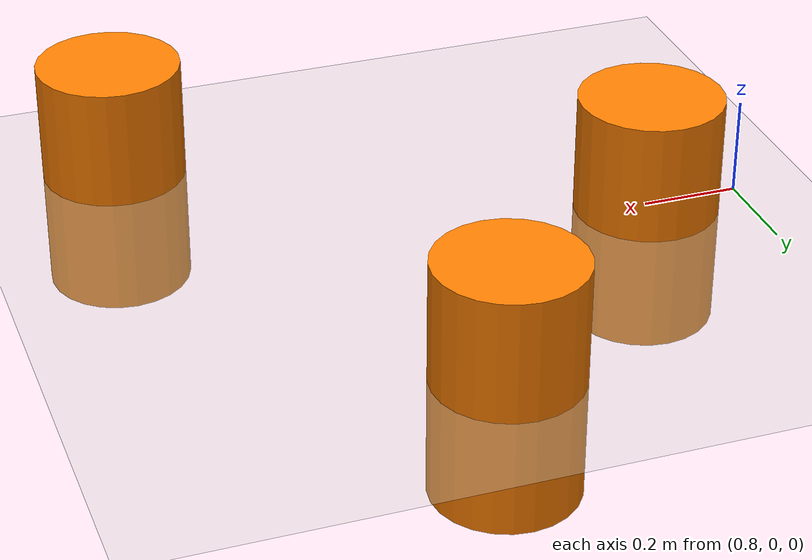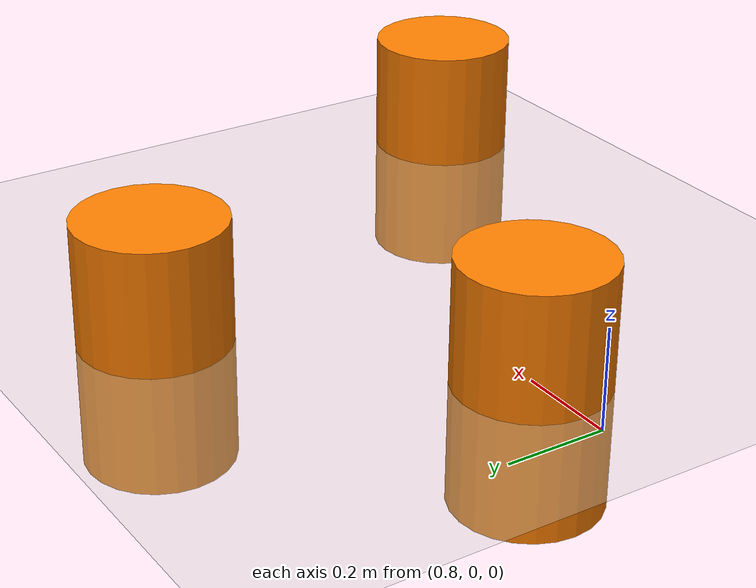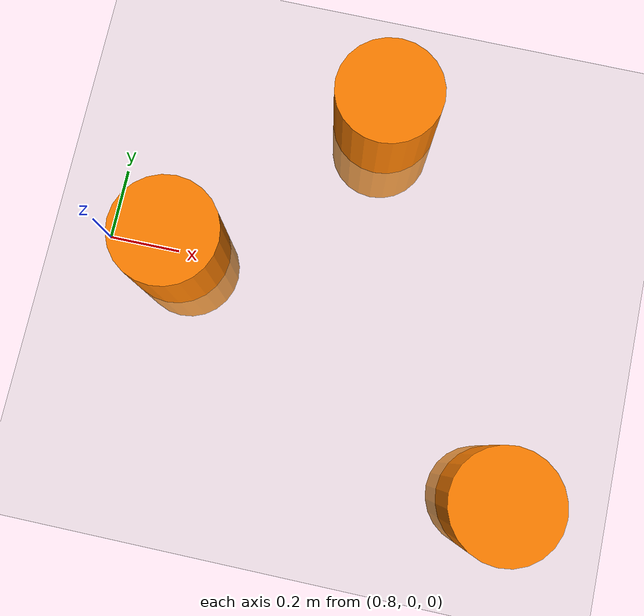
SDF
<?xml version="1.0" ?>
<sdf version="1.6">
  <world name="dwa_test_world">

    <!-- Physics -->
    <physics type="ode">
      <max_step_size>0.001</max_step_size>
      <real_time_factor>1.0</real_time_factor>
    </physics>

    <!-- Sun -->
    <include>
      <uri>model://sun</uri>
    </include>

    <!-- Ground -->
    <include>
      <uri>model://ground_plane</uri>
    </include>

    <!-- Cone obstacles -->
    <model name="cone1">
      <pose>1 0 0 0 0 0</pose>
      <link name="link">
        <collision name="collision">
          <geometry>
            <cylinder>
              <radius>0.15</radius>
              <length>0.5</length>
            </cylinder>
          </geometry>
        </collision>
        <visual name="visual">
          <geometry>
            <cylinder>
              <radius>0.15</radius>
              <length>0.5</length>
            </cylinder>
          </geometry>
          <material>
            <ambient>1 0.5 0 1</ambient>
            <diffuse>1 0.5 0 1</diffuse>
          </material>
        </visual>
      </link>
    </model>

    <model name="cone2">
      <pose>1.5 0.5 0 0 0 0</pose>
      <link name="link">
        <collision name="collision">
          <geometry>
            <cylinder>
              <radius>0.15</radius>
              <length>0.5</length>
            </cylinder>
          </geometry>
        </collision>
        <visual name="visual">
          <geometry>
            <cylinder>
              <radius>0.15</radius>
              <length>0.5</length>
            </cylinder>
          </geometry>
          <material>
            <ambient>1 0.5 0 1</ambient>
            <diffuse>1 0.5 0 1</diffuse>
          </material>
        </visual>
      </link>
    </model>

    <model name="cone3">
      <pose>2 -0.5 0 0 0 0</pose>
      <link name="link">
        <collision name="collision">
          <geometry>
            <cylinder>
              <radius>0.15</radius>
              <length>0.5</length>
            </cylinder>
          </geometry>
        </collision>
        <visual name="visual">
          <geometry>
            <cylinder>
              <radius>0.15</radius>
              <length>0.5</length>
            </cylinder>
          </geometry>
          <material>
            <ambient>1 0.5 0 1</ambient>
            <diffuse>1 0.5 0 1</diffuse>
          </material>
        </visual>
      </link>
    </model>

  </world>
</sdf>
